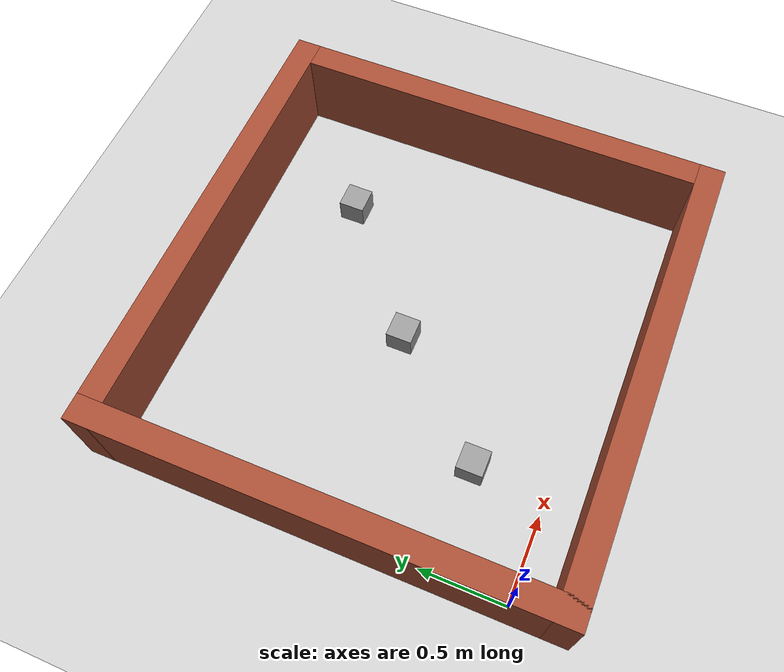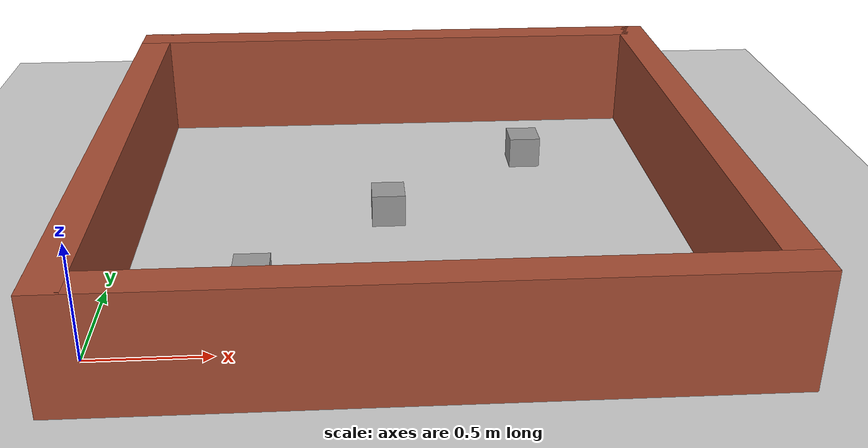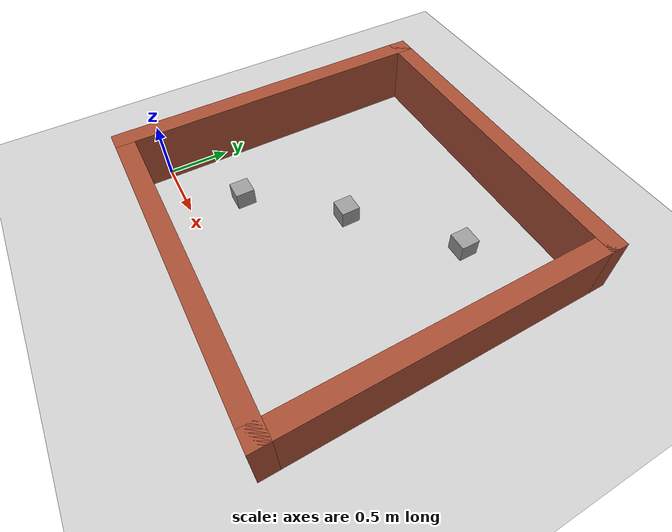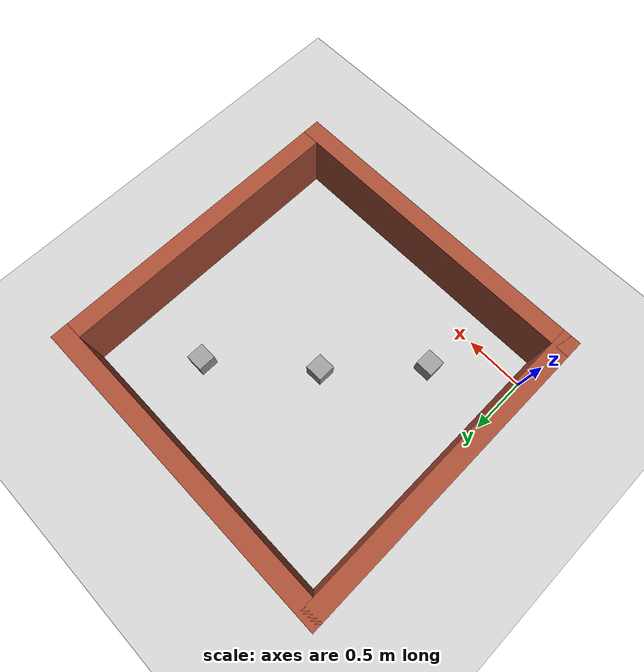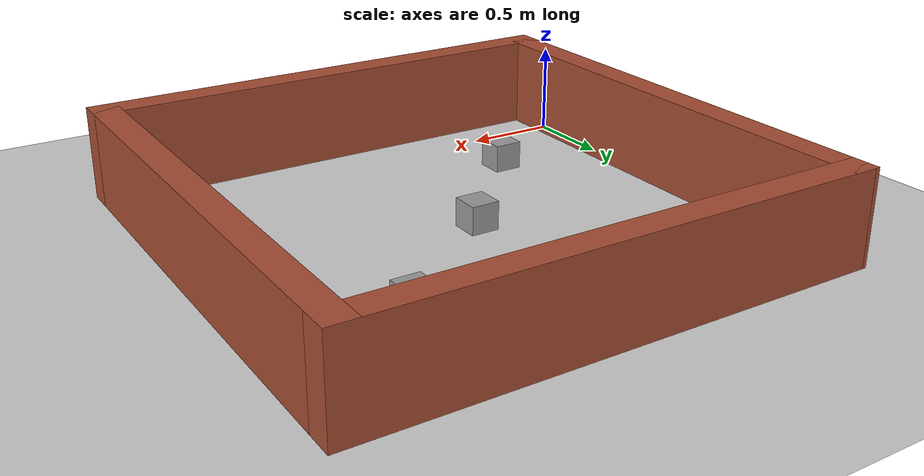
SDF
<sdf version="1.7">
 <world name="default">
  <light name="sun" type="directional">
   <pose>0 0 10 0 -0 0</pose>
   <diffuse>0.8 0.8 0.8 1</diffuse>
   <specular>0.2 0.2 0.2 1</specular>
   <attenuation>
    <range>1000</range>
    <constant>0.9</constant>
    <linear>0.01</linear>
    <quadratic>0.001</quadratic>
   </attenuation>
   <direction>-0.5 0.1 -0.9</direction>
   <spot><inner_angle>0</inner_angle><outer_angle>0</outer_angle><falloff>0</falloff></spot>
  </light>
  <model name="ground_plane">
   <static>1</static>
   <link name="link">
    <collision name="collision">
     <geometry><plane><normal>0 0 1</normal><size>100 100</size></plane></geometry>
     <surface>
      <contact><collide_bitmask>65535</collide_bitmask></contact>
      <friction><ode><mu>100</mu><mu2>50</mu2></ode></friction>
     </surface>
    </collision>
    <visual name="visual">
     <cast_shadows>0</cast_shadows>
     <geometry><plane><normal>0 0 1</normal><size>100 100</size></plane></geometry>
     <material>
      <script><uri>file://media/materials/scripts/gazebo.material</uri><name>Gazebo/Grey</name></script>
     </material>
    </visual>
    <kinematic>1</kinematic>
   </link>
  </model>
  <gravity>0 0 -9.8</gravity>
  <magnetic_field>6e-06 2.3e-05 -4.2e-05</magnetic_field>
  <atmosphere type="adiabatic"/>
  <physics type="ode">
   <max_step_size>0.001</max_step_size>
   <real_time_factor>1</real_time_factor>
   <real_time_update_rate>1000</real_time_update_rate>
  </physics>
  <scene><ambient>0.4 0.4 0.4 1</ambient><background>0.7 0.7 0.7 1</background><shadows>1</shadows></scene>
  <spherical_coordinates>
   <surface_model>EARTH_WGS84</surface_model>
   <latitude_deg>0</latitude_deg>
   <longitude_deg>0</longitude_deg>
   <elevation>0</elevation>
   <heading_deg>0</heading_deg>
  </spherical_coordinates>
  <model name="arena_9Fx9F">
   <pose>1.29848 1.02803 0 0 -0 0</pose>
   <link name="Wall_3">
    <collision name="Wall_3_Collision">
     <geometry><box><size>2.76521 0.15 0.5</size></box></geometry>
     <pose>0 0 0.25 0 -0 0</pose>
    </collision>
    <visual name="Wall_3_Visual">
     <pose>0 0 0.25 0 -0 0</pose>
     <geometry><box><size>2.76521 0.15 0.5</size></box></geometry>
     <material>
      <script><uri>file://media/materials/scripts/gazebo.material</uri><name>Gazebo/Bricks</name></script>
      <ambient>1 1 1 1</ambient>
     </material>
     <meta><layer>0</layer></meta>
    </visual>
    <pose>-2.3e-05 1.3 0 0 -0 1.9e-05</pose>
   </link>
   <link name="Wall_4">
    <collision name="Wall_4_Collision">
     <geometry><box><size>2.75 0.15 0.5</size></box></geometry>
     <pose>0 0 0.25 0 -0 0</pose>
    </collision>
    <visual name="Wall_4_Visual">
     <pose>0 0 0.25 0 -0 0</pose>
     <geometry><box><size>2.75 0.15 0.5</size></box></geometry>
     <material>
      <script><uri>file://media/materials/scripts/gazebo.material</uri><name>Gazebo/Bricks</name></script>
      <ambient>1 1 1 1</ambient>
     </material>
     <meta><layer>0</layer></meta>
    </visual>
    <pose>1.30748 -1e-06 0 0 -0 -1.57076</pose>
   </link>
   <link name="Wall_6">
    <collision name="Wall_6_Collision">
     <geometry><box><size>2.75 0.15 0.5</size></box></geometry>
     <pose>0 0 0.25 0 -0 0</pose>
    </collision>
    <visual name="Wall_6_Visual">
     <pose>0 0 0.25 0 -0 0</pose>
     <geometry><box><size>2.75 0.15 0.5</size></box></geometry>
     <material>
      <script><uri>file://media/materials/scripts/gazebo.material</uri><name>Gazebo/Bricks</name></script>
      <ambient>1 1 1 1</ambient>
     </material>
     <meta><layer>0</layer></meta>
    </visual>
    <pose>-1.30747 -2.6e-05 0 0 -0 -1.5708</pose>
   </link>
   <link name="Wall_7">
    <collision name="Wall_7_Collision">
     <geometry><box><size>2.76521 0.15 0.5</size></box></geometry>
     <pose>0 0 0.25 0 -0 0</pose>
    </collision>
    <visual name="Wall_7_Visual">
     <pose>0 0 0.25 0 -0 0</pose>
     <geometry><box><size>2.76521 0.15 0.5</size></box></geometry>
     <material>
      <script><uri>file://media/materials/scripts/gazebo.material</uri><name>Gazebo/Bricks</name></script>
      <ambient>1 1 1 1</ambient>
     </material>
     <meta><layer>0</layer></meta>
    </visual>
    <pose>2.5e-05 -1.30003 0 0 -0 0</pose>
   </link>
   <static>1</static>
  </model>
  <model name="unit_box_6fx6f_01">
   <link name="link">
    <inertial>
     <mass>1</mass>
     <inertia>
      <ixx>0.166667</ixx>
      <ixy>0</ixy>
      <ixz>0</ixz>
      <iyy>0.166667</iyy>
      <iyz>0</iyz>
      <izz>0.166667</izz>
     </inertia>
    </inertial>
    <gravity>0</gravity>
    <visual name="visual">
     <geometry><box><size>0.1524 0.1524 0.1524</size></box></geometry>
     <material>
      <script><name>Gazebo/Grey</name><uri>file://media/materials/scripts/gazebo.material</uri></script>
      <shader type="pixel"><normal_map>__default__</normal_map></shader>
      <ambient>0.3 0.3 0.3 1</ambient>
      <diffuse>0.7 0.7 0.7 1</diffuse>
      <specular>0.01 0.01 0.01 1</specular>
      <emissive>0 0 0 1</emissive>
     </material>
    </visual>
    <collision name="collision">
     <geometry><box><size>0.1524 0.1524 0.1524</size></box></geometry>
     <surface>
      <friction>
       <ode><mu>1</mu><mu2>1</mu2><fdir1>0 0 0</fdir1><slip1>0</slip1><slip2>0</slip2></ode>
       <torsional>
        <coefficient>1</coefficient>
        <patch_radius>0</patch_radius>
        <surface_radius>0</surface_radius>
        <use_patch_radius>1</use_patch_radius>
        <ode><slip>0</slip></ode>
       </torsional>
      </friction>
      <bounce><restitution_coefficient>0</restitution_coefficient><threshold>1e+06</threshold></bounce>
      <contact>
       <collide_without_contact>0</collide_without_contact>
       <collide_without_contact_bitmask>1</collide_without_contact_bitmask>
       <collide_bitmask>1</collide_bitmask>
       <ode>
        <soft_cfm>0</soft_cfm>
        <soft_erp>0.2</soft_erp>
        <kp>1e+13</kp>
        <kd>1</kd>
        <max_vel>0.01</max_vel>
        <min_depth>0</min_depth>
       </ode>
       <bullet>
        <split_impulse>1</split_impulse>
        <split_impulse_penetration_threshold>-0.01</split_impulse_penetration_threshold>
        <soft_cfm>0</soft_cfm>
        <soft_erp>0.2</soft_erp>
        <kp>1e+13</kp>
        <kd>1</kd>
       </bullet>
      </contact>
     </surface>
    </collision>
   </link>
   <static>0</static>
   <allow_auto_disable>0</allow_auto_disable>
   <pose>0.612587 0.425934 0.082839 0 -0 0</pose>
  </model>
  <model name="unit_box_6fx6f_01_clone">
   <link name="link">
    <inertial>
     <mass>1</mass>
     <inertia>
      <ixx>0.166667</ixx>
      <ixy>0</ixy>
      <ixz>0</ixz>
      <iyy>0.166667</iyy>
      <iyz>0</iyz>
      <izz>0.166667</izz>
     </inertia>
    </inertial>
    <gravity>0</gravity>
    <visual name="visual">
     <geometry><box><size>0.1524 0.1524 0.1524</size></box></geometry>
     <material>
      <script><name>Gazebo/Grey</name><uri>file://media/materials/scripts/gazebo.material</uri></script>
      <shader type="pixel"><normal_map>__default__</normal_map></shader>
      <ambient>0.3 0.3 0.3 1</ambient>
      <diffuse>0.7 0.7 0.7 1</diffuse>
      <specular>0.01 0.01 0.01 1</specular>
      <emissive>0 0 0 1</emissive>
     </material>
    </visual>
    <collision name="collision">
     <geometry><box><size>0.1524 0.1524 0.1524</size></box></geometry>
     <surface>
      <friction>
       <ode><mu>1</mu><mu2>1</mu2><fdir1>0 0 0</fdir1><slip1>0</slip1><slip2>0</slip2></ode>
       <torsional>
        <coefficient>1</coefficient>
        <patch_radius>0</patch_radius>
        <surface_radius>0</surface_radius>
        <use_patch_radius>1</use_patch_radius>
        <ode><slip>0</slip></ode>
       </torsional>
      </friction>
      <bounce><restitution_coefficient>0</restitution_coefficient><threshold>1e+06</threshold></bounce>
      <contact>
       <collide_without_contact>0</collide_without_contact>
       <collide_without_contact_bitmask>1</collide_without_contact_bitmask>
       <collide_bitmask>1</collide_bitmask>
       <ode>
        <soft_cfm>0</soft_cfm>
        <soft_erp>0.2</soft_erp>
        <kp>1e+13</kp>
        <kd>1</kd>
        <max_vel>0.01</max_vel>
        <min_depth>0</min_depth>
       </ode>
       <bullet>
        <split_impulse>1</split_impulse>
        <split_impulse_penetration_threshold>-0.01</split_impulse_penetration_threshold>
        <soft_cfm>0</soft_cfm>
        <soft_erp>0.2</soft_erp>
        <kp>1e+13</kp>
        <kd>1</kd>
       </bullet>
      </contact>
     </surface>
    </collision>
   </link>
   <static>0</static>
   <allow_auto_disable>0</allow_auto_disable>
   <pose>1.1957 1.07356 0.082839 0 -0 0</pose>
  </model>
  <model name="unit_box_6fx6f_01_clone_0">
   <link name="link">
    <inertial>
     <mass>1</mass>
     <inertia>
      <ixx>0.166667</ixx>
      <ixy>0</ixy>
      <ixz>0</ixz>
      <iyy>0.166667</iyy>
      <iyz>0</iyz>
      <izz>0.166667</izz>
     </inertia>
    </inertial>
    <gravity>0</gravity>
    <visual name="visual">
     <geometry><box><size>0.1524 0.1524 0.1524</size></box></geometry>
     <material>
      <script><name>Gazebo/Grey</name><uri>file://media/materials/scripts/gazebo.material</uri></script>
      <shader type="pixel"><normal_map>__default__</normal_map></shader>
      <ambient>0.3 0.3 0.3 1</ambient>
      <diffuse>0.7 0.7 0.7 1</diffuse>
      <specular>0.01 0.01 0.01 1</specular>
      <emissive>0 0 0 1</emissive>
     </material>
    </visual>
    <collision name="collision">
     <geometry><box><size>0.1524 0.1524 0.1524</size></box></geometry>
     <surface>
      <friction>
       <ode><mu>1</mu><mu2>1</mu2><fdir1>0 0 0</fdir1><slip1>0</slip1><slip2>0</slip2></ode>
       <torsional>
        <coefficient>1</coefficient>
        <patch_radius>0</patch_radius>
        <surface_radius>0</surface_radius>
        <use_patch_radius>1</use_patch_radius>
        <ode><slip>0</slip></ode>
       </torsional>
      </friction>
      <bounce><restitution_coefficient>0</restitution_coefficient><threshold>1e+06</threshold></bounce>
      <contact>
       <collide_without_contact>0</collide_without_contact>
       <collide_without_contact_bitmask>1</collide_without_contact_bitmask>
       <collide_bitmask>1</collide_bitmask>
       <ode>
        <soft_cfm>0</soft_cfm>
        <soft_erp>0.2</soft_erp>
        <kp>1e+13</kp>
        <kd>1</kd>
        <max_vel>0.01</max_vel>
        <min_depth>0</min_depth>
       </ode>
       <bullet>
        <split_impulse>1</split_impulse>
        <split_impulse_penetration_threshold>-0.01</split_impulse_penetration_threshold>
        <soft_cfm>0</soft_cfm>
        <soft_erp>0.2</soft_erp>
        <kp>1e+13</kp>
        <kd>1</kd>
       </bullet>
      </contact>
     </surface>
    </collision>
   </link>
   <static>0</static>
   <allow_auto_disable>0</allow_auto_disable>
   <pose>1.91739 1.69022 0.082839 0 -0 0</pose>
  </model>
 </world>
</sdf>
